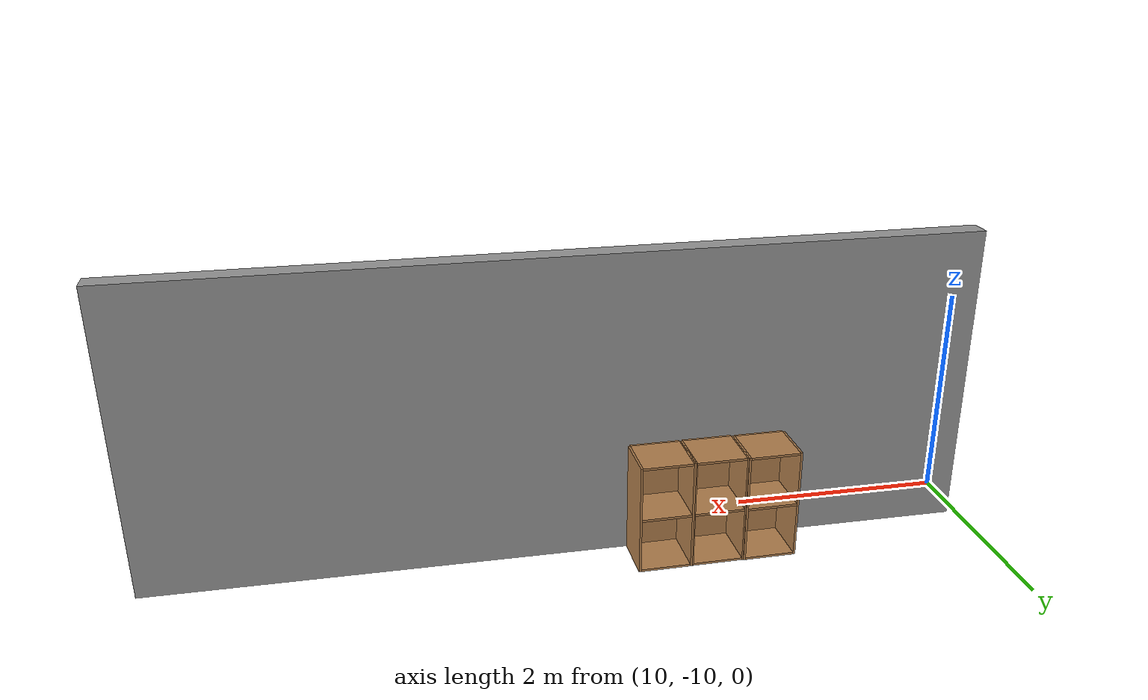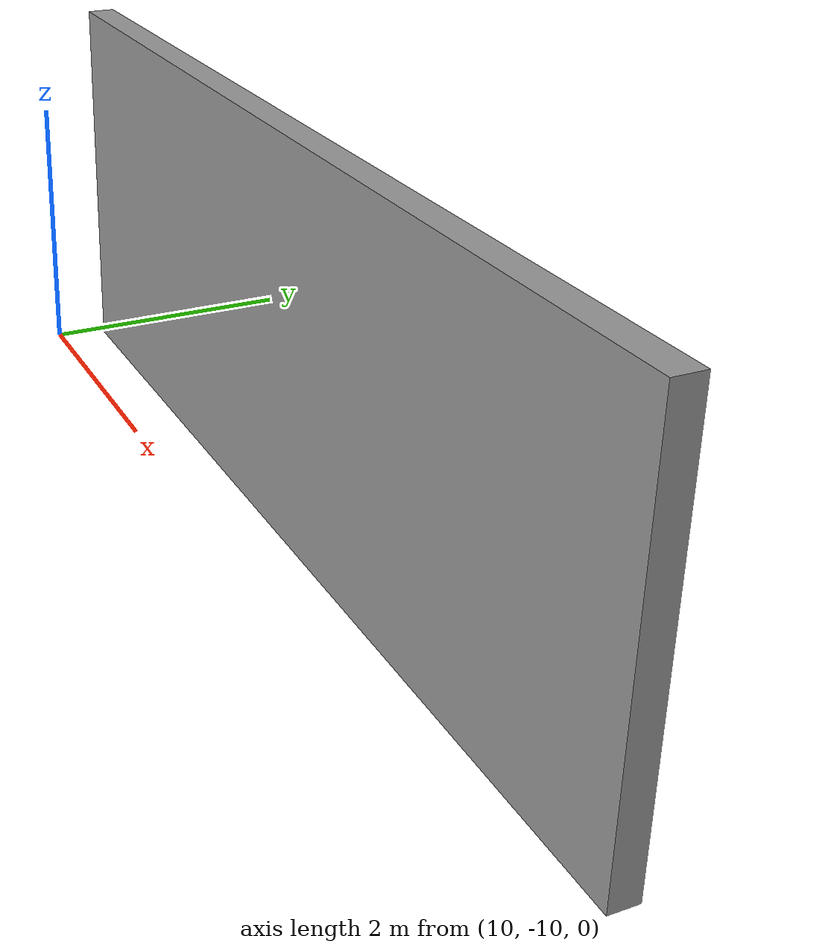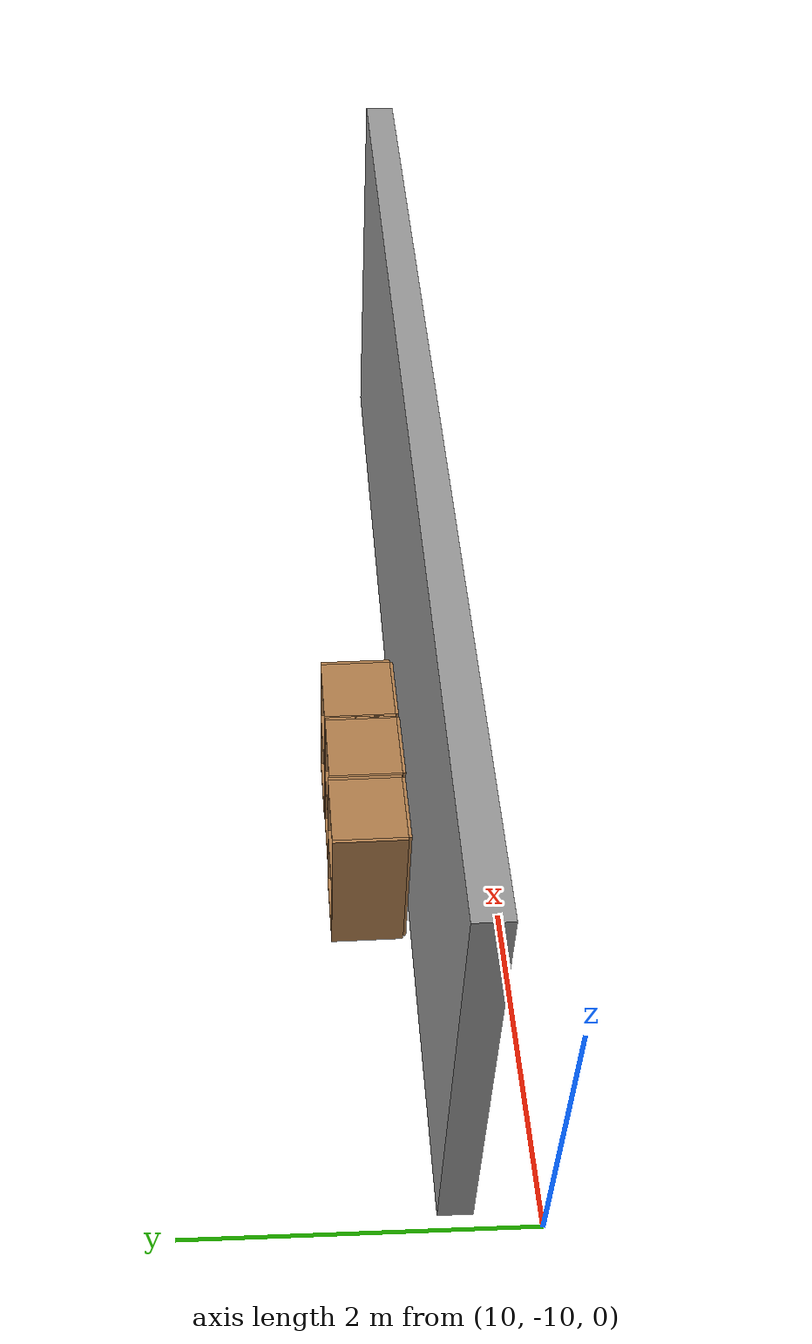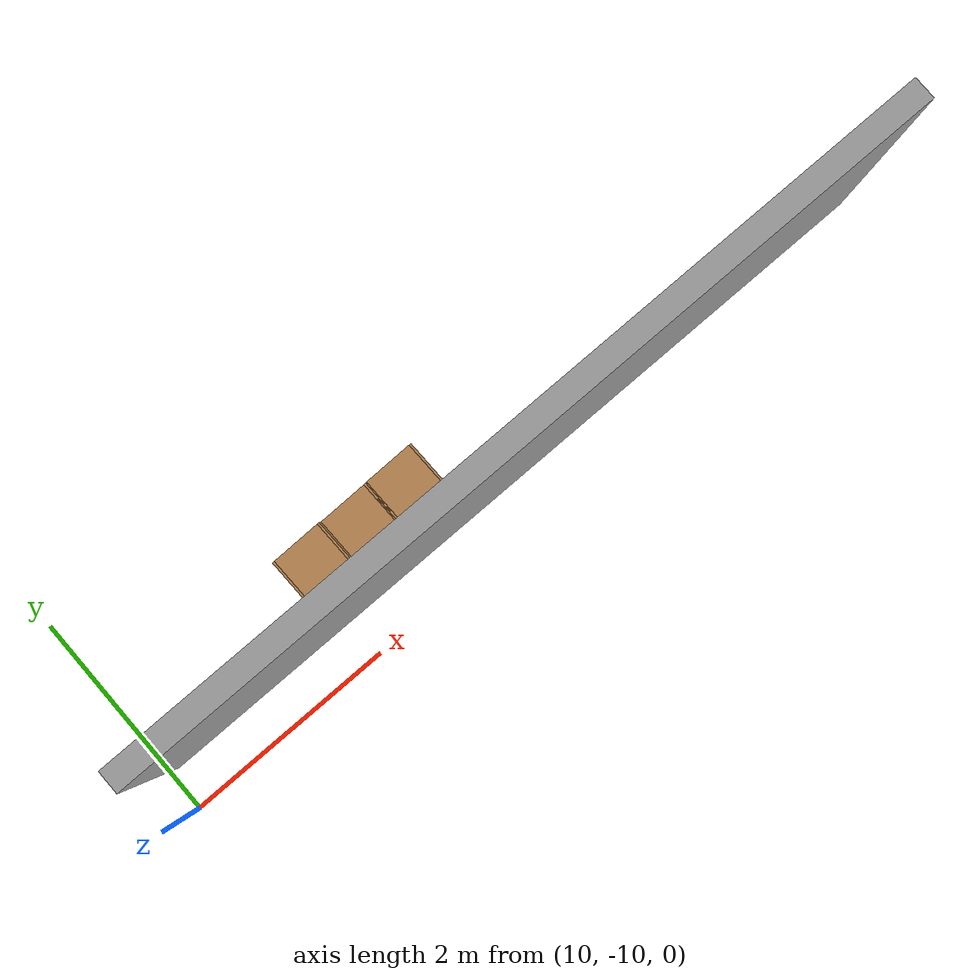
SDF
<sdf version="1.7">
 <world name="factory">
  <model name="grey_wall_clone_0">
   <static>1</static>
   <link name="link">
    <pose>0 0 1.4 0 -0 0</pose>
    <collision name="collision"><geometry><box><size>7.5 0.2 2.8</size></box></geometry></collision>
    <visual name="visual">
     <cast_shadows>0</cast_shadows>
     <geometry><box><size>7.5 0.2 2.8</size></box></geometry>
     <material>
      <script>
       <uri>model://grey_wall/materials/scripts</uri>
       <uri>model://grey_wall/materials/textures</uri>
       <name>vrc/grey_wall</name>
      </script>
     </material>
    </visual>
   </link>
   <pose>13.8347 -9.52636 0 0 -0 0</pose>
  </model>
  <model name="cabinet">
   <static>1</static>
   <link name="cabinet_bottom_plate">
    <inertial>
     <pose>0 0 -1 0 -0 0</pose>
     <inertia><ixx>2.05</ixx><ixy>0</ixy><ixz>0</ixz><iyy>2.05</iyy><iyz>0</iyz><izz>2.05</izz></inertia>
     <mass>25</mass>
    </inertial>
    <collision name="cabinet_bottom_plate_geom">
     <pose>0 0 0.01 0 -0 0</pose>
     <geometry><box><size>0.45 0.45 0.02</size></box></geometry>
    </collision>
    <visual name="cabinet_bottom_plate_geom_visual">
     <pose>0 0 0.01 0 -0 0</pose>
     <geometry><box><size>0.45 0.45 0.02</size></box></geometry>
     <material>
      <script><uri>file://media/materials/scripts/gazebo.material</uri><name>Gazebo/Wood</name></script>
     </material>
    </visual>
    <collision name="cabinet_bottom_plate_geom_cabinet_back_plate">
     <pose>0.235 0 0.51 0 -0 0</pose>
     <geometry><box><size>0.02 0.45 1.02</size></box></geometry>
    </collision>
    <visual name="cabinet_bottom_plate_geom_cabinet_back_plate_visual">
     <pose>0.235 0 0.51 0 -0 0</pose>
     <geometry><box><size>0.02 0.45 1.02</size></box></geometry>
     <material>
      <script><uri>file://media/materials/scripts/gazebo.material</uri><name>Gazebo/Wood</name></script>
     </material>
    </visual>
    <collision name="cabinet_bottom_plate_geom_cabinet_left_plate">
     <pose>0 0.235 0.51 0 -0 0</pose>
     <geometry><box><size>0.45 0.02 1.02</size></box></geometry>
    </collision>
    <visual name="cabinet_bottom_plate_geom_cabinet_left_plate_visual">
     <pose>0 0.235 0.51 0 -0 0</pose>
     <geometry><box><size>0.45 0.02 1.02</size></box></geometry>
     <material>
      <script><uri>file://media/materials/scripts/gazebo.material</uri><name>Gazebo/Wood</name></script>
     </material>
    </visual>
    <collision name="cabinet_bottom_plate_geom_cabinet_middle_plate">
     <pose>0 0 0.51 0 -0 0</pose>
     <geometry><box><size>0.45 0.45 0.02</size></box></geometry>
    </collision>
    <visual name="cabinet_bottom_plate_geom_cabinet_middle_plate_visual">
     <pose>0 0 0.51 0 -0 0</pose>
     <geometry><box><size>0.45 0.45 0.02</size></box></geometry>
     <material>
      <script><uri>file://media/materials/scripts/gazebo.material</uri><name>Gazebo/Wood</name></script>
     </material>
    </visual>
    <collision name="cabinet_bottom_plate_geom_cabinet_right_plate">
     <pose>0 -0.235 0.51 0 -0 0</pose>
     <geometry><box><size>0.45 0.02 1.02</size></box></geometry>
    </collision>
    <visual name="cabinet_bottom_plate_geom_cabinet_right_plate_visual">
     <pose>0 -0.235 0.51 0 -0 0</pose>
     <geometry><box><size>0.45 0.02 1.02</size></box></geometry>
     <material>
      <script><uri>file://media/materials/scripts/gazebo.material</uri><name>Gazebo/Wood</name></script>
     </material>
    </visual>
    <collision name="cabinet_bottom_plate_geom_cabinet_top_plate">
     <pose>0 0 1.01 0 -0 0</pose>
     <geometry><box><size>0.45 0.45 0.02</size></box></geometry>
    </collision>
    <visual name="cabinet_bottom_plate_geom_cabinet_top_plate_visual">
     <pose>0 0 1.01 0 -0 0</pose>
     <geometry><box><size>0.45 0.45 0.02</size></box></geometry>
     <material>
      <script><uri>file://media/materials/scripts/gazebo.material</uri><name>Gazebo/Wood</name></script>
     </material>
    </visual>
   </link>
   <pose>13.0394 -9.13497 0.037072 0 0 -1.55676</pose>
  </model>
  <model name="cabinet_clone">
   <static>1</static>
   <link name="cabinet_bottom_plate">
    <inertial>
     <pose>0 0 -1 0 -0 0</pose>
     <inertia><ixx>2.05</ixx><ixy>0</ixy><ixz>0</ixz><iyy>2.05</iyy><iyz>0</iyz><izz>2.05</izz></inertia>
     <mass>25</mass>
    </inertial>
    <collision name="cabinet_bottom_plate_geom">
     <pose>0 0 0.01 0 -0 0</pose>
     <geometry><box><size>0.45 0.45 0.02</size></box></geometry>
    </collision>
    <visual name="cabinet_bottom_plate_geom_visual">
     <pose>0 0 0.01 0 -0 0</pose>
     <geometry><box><size>0.45 0.45 0.02</size></box></geometry>
     <material>
      <script><uri>file://media/materials/scripts/gazebo.material</uri><name>Gazebo/Wood</name></script>
     </material>
    </visual>
    <collision name="cabinet_bottom_plate_geom_cabinet_back_plate">
     <pose>0.235 0 0.51 0 -0 0</pose>
     <geometry><box><size>0.02 0.45 1.02</size></box></geometry>
    </collision>
    <visual name="cabinet_bottom_plate_geom_cabinet_back_plate_visual">
     <pose>0.235 0 0.51 0 -0 0</pose>
     <geometry><box><size>0.02 0.45 1.02</size></box></geometry>
     <material>
      <script><uri>file://media/materials/scripts/gazebo.material</uri><name>Gazebo/Wood</name></script>
     </material>
    </visual>
    <collision name="cabinet_bottom_plate_geom_cabinet_left_plate">
     <pose>0 0.235 0.51 0 -0 0</pose>
     <geometry><box><size>0.45 0.02 1.02</size></box></geometry>
    </collision>
    <visual name="cabinet_bottom_plate_geom_cabinet_left_plate_visual">
     <pose>0 0.235 0.51 0 -0 0</pose>
     <geometry><box><size>0.45 0.02 1.02</size></box></geometry>
     <material>
      <script><uri>file://media/materials/scripts/gazebo.material</uri><name>Gazebo/Wood</name></script>
     </material>
    </visual>
    <collision name="cabinet_bottom_plate_geom_cabinet_middle_plate">
     <pose>0 0 0.51 0 -0 0</pose>
     <geometry><box><size>0.45 0.45 0.02</size></box></geometry>
    </collision>
    <visual name="cabinet_bottom_plate_geom_cabinet_middle_plate_visual">
     <pose>0 0 0.51 0 -0 0</pose>
     <geometry><box><size>0.45 0.45 0.02</size></box></geometry>
     <material>
      <script><uri>file://media/materials/scripts/gazebo.material</uri><name>Gazebo/Wood</name></script>
     </material>
    </visual>
    <collision name="cabinet_bottom_plate_geom_cabinet_right_plate">
     <pose>0 -0.235 0.51 0 -0 0</pose>
     <geometry><box><size>0.45 0.02 1.02</size></box></geometry>
    </collision>
    <visual name="cabinet_bottom_plate_geom_cabinet_right_plate_visual">
     <pose>0 -0.235 0.51 0 -0 0</pose>
     <geometry><box><size>0.45 0.02 1.02</size></box></geometry>
     <material>
      <script><uri>file://media/materials/scripts/gazebo.material</uri><name>Gazebo/Wood</name></script>
     </material>
    </visual>
    <collision name="cabinet_bottom_plate_geom_cabinet_top_plate">
     <pose>0 0 1.01 0 -0 0</pose>
     <geometry><box><size>0.45 0.45 0.02</size></box></geometry>
    </collision>
    <visual name="cabinet_bottom_plate_geom_cabinet_top_plate_visual">
     <pose>0 0 1.01 0 -0 0</pose>
     <geometry><box><size>0.45 0.45 0.02</size></box></geometry>
     <material>
      <script><uri>file://media/materials/scripts/gazebo.material</uri><name>Gazebo/Wood</name></script>
     </material>
    </visual>
   </link>
   <pose>12.5585 -9.14446 0.037072 0 0 -1.55676</pose>
  </model>
  <model name="cabinet_clone_0">
   <static>1</static>
   <link name="cabinet_bottom_plate">
    <inertial>
     <pose>0 0 -1 0 -0 0</pose>
     <inertia><ixx>2.05</ixx><ixy>0</ixy><ixz>0</ixz><iyy>2.05</iyy><iyz>0</iyz><izz>2.05</izz></inertia>
     <mass>25</mass>
    </inertial>
    <collision name="cabinet_bottom_plate_geom">
     <pose>0 0 0.01 0 -0 0</pose>
     <geometry><box><size>0.45 0.45 0.02</size></box></geometry>
    </collision>
    <visual name="cabinet_bottom_plate_geom_visual">
     <pose>0 0 0.01 0 -0 0</pose>
     <geometry><box><size>0.45 0.45 0.02</size></box></geometry>
     <material>
      <script><uri>file://media/materials/scripts/gazebo.material</uri><name>Gazebo/Wood</name></script>
     </material>
    </visual>
    <collision name="cabinet_bottom_plate_geom_cabinet_back_plate">
     <pose>0.235 0 0.51 0 -0 0</pose>
     <geometry><box><size>0.02 0.45 1.02</size></box></geometry>
    </collision>
    <visual name="cabinet_bottom_plate_geom_cabinet_back_plate_visual">
     <pose>0.235 0 0.51 0 -0 0</pose>
     <geometry><box><size>0.02 0.45 1.02</size></box></geometry>
     <material>
      <script><uri>file://media/materials/scripts/gazebo.material</uri><name>Gazebo/Wood</name></script>
     </material>
    </visual>
    <collision name="cabinet_bottom_plate_geom_cabinet_left_plate">
     <pose>0 0.235 0.51 0 -0 0</pose>
     <geometry><box><size>0.45 0.02 1.02</size></box></geometry>
    </collision>
    <visual name="cabinet_bottom_plate_geom_cabinet_left_plate_visual">
     <pose>0 0.235 0.51 0 -0 0</pose>
     <geometry><box><size>0.45 0.02 1.02</size></box></geometry>
     <material>
      <script><uri>file://media/materials/scripts/gazebo.material</uri><name>Gazebo/Wood</name></script>
     </material>
    </visual>
    <collision name="cabinet_bottom_plate_geom_cabinet_middle_plate">
     <pose>0 0 0.51 0 -0 0</pose>
     <geometry><box><size>0.45 0.45 0.02</size></box></geometry>
    </collision>
    <visual name="cabinet_bottom_plate_geom_cabinet_middle_plate_visual">
     <pose>0 0 0.51 0 -0 0</pose>
     <geometry><box><size>0.45 0.45 0.02</size></box></geometry>
     <material>
      <script><uri>file://media/materials/scripts/gazebo.material</uri><name>Gazebo/Wood</name></script>
     </material>
    </visual>
    <collision name="cabinet_bottom_plate_geom_cabinet_right_plate">
     <pose>0 -0.235 0.51 0 -0 0</pose>
     <geometry><box><size>0.45 0.02 1.02</size></box></geometry>
    </collision>
    <visual name="cabinet_bottom_plate_geom_cabinet_right_plate_visual">
     <pose>0 -0.235 0.51 0 -0 0</pose>
     <geometry><box><size>0.45 0.02 1.02</size></box></geometry>
     <material>
      <script><uri>file://media/materials/scripts/gazebo.material</uri><name>Gazebo/Wood</name></script>
     </material>
    </visual>
    <collision name="cabinet_bottom_plate_geom_cabinet_top_plate">
     <pose>0 0 1.01 0 -0 0</pose>
     <geometry><box><size>0.45 0.45 0.02</size></box></geometry>
    </collision>
    <visual name="cabinet_bottom_plate_geom_cabinet_top_plate_visual">
     <pose>0 0 1.01 0 -0 0</pose>
     <geometry><box><size>0.45 0.45 0.02</size></box></geometry>
     <material>
      <script><uri>file://media/materials/scripts/gazebo.material</uri><name>Gazebo/Wood</name></script>
     </material>
    </visual>
   </link>
   <pose>12.0748 -9.14339 0.037072 0 0 -1.55676</pose>
  </model>
 </world>
</sdf>
